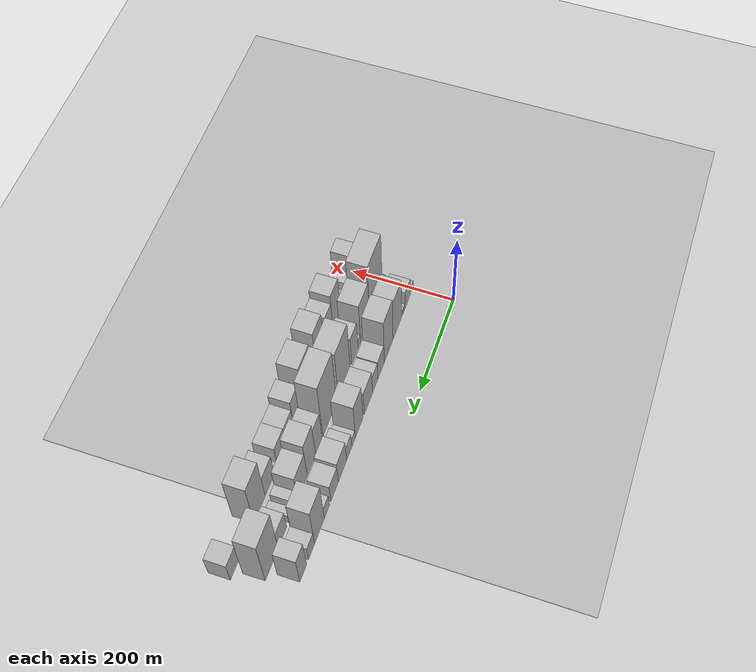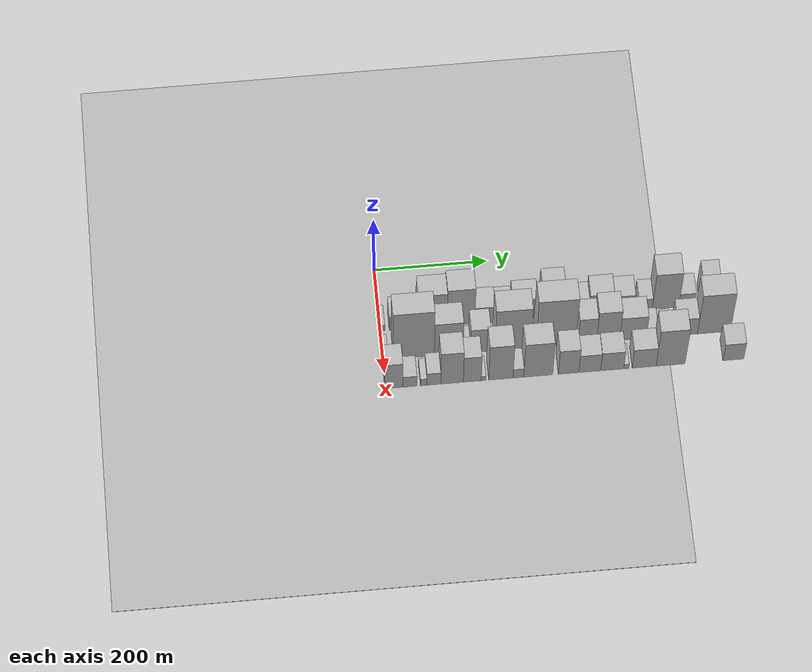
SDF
<sdf version="1.6">
 <world name="default">
  <include><name>ground_plane_1</name><uri>model://HANNAS_ground_plane</uri></include>
  <include>
   <name>ground_plane_2</name>
   <uri>model://HANNAS_ground_plane</uri>
   <pose>100 0 0  0 0 0</pose>
  </include>
  <model name="building_19">
   <static>1</static>
   <pose>100.0000 2.8807 0 0.000000 0.000000 0.000000</pose>
   <link name="link">
    <pose>0 0 12.00 0 0 0</pose>
    <collision name="collision"><geometry><box><size>40.0000 9.7299 24.0000</size></box></geometry></collision>
    <visual name="visual">
     <cast_shadows>0</cast_shadows>
     <geometry><box><size>40.0000 9.7299 24.0000</size></box></geometry>
     <material>
      <script>
       <uri>model://HANNAS_wall/materials/scripts</uri>
       <uri>model://HANNAS_wall/materials/textures</uri>
       <name>vrc/HANNAS_wall</name>
      </script>
     </material>
    </visual>
   </link>
  </model>
  <model name="building_20">
   <static>1</static>
   <pose>100.0000 31.1038 0 0.000000 0.000000 0.000000</pose>
   <link name="link">
    <pose>0 0 28.50 0 0 0</pose>
    <collision name="collision"><geometry><box><size>40.0000 30.7164 57.0000</size></box></geometry></collision>
    <visual name="visual">
     <cast_shadows>0</cast_shadows>
     <geometry><box><size>40.0000 30.7164 57.0000</size></box></geometry>
     <material>
      <script>
       <uri>model://HANNAS_wall/materials/scripts</uri>
       <uri>model://HANNAS_wall/materials/textures</uri>
       <name>vrc/HANNAS_wall</name>
      </script>
     </material>
    </visual>
   </link>
  </model>
  <model name="building_21">
   <static>1</static>
   <pose>100.0000 50.1146 0 0.000000 0.000000 0.000000</pose>
   <link name="link">
    <pose>0 0 7.50 0 0 0</pose>
    <collision name="collision"><geometry><box><size>40.0000 7.3051 15.0000</size></box></geometry></collision>
    <visual name="visual">
     <cast_shadows>0</cast_shadows>
     <geometry><box><size>40.0000 7.3051 15.0000</size></box></geometry>
     <material>
      <script>
       <uri>model://HANNAS_wall/materials/scripts</uri>
       <uri>model://HANNAS_wall/materials/textures</uri>
       <name>vrc/HANNAS_wall</name>
      </script>
     </material>
    </visual>
   </link>
  </model>
  <model name="building_22">
   <static>1</static>
   <pose>100.0000 58.1221 0 0.000000 0.000000 0.000000</pose>
   <link name="link">
    <pose>0 0 9.00 0 0 0</pose>
    <collision name="collision"><geometry><box><size>40.0000 8.7098 18.0000</size></box></geometry></collision>
    <visual name="visual">
     <cast_shadows>0</cast_shadows>
     <geometry><box><size>40.0000 8.7098 18.0000</size></box></geometry>
     <material>
      <script>
       <uri>model://HANNAS_wall/materials/scripts</uri>
       <uri>model://HANNAS_wall/materials/textures</uri>
       <name>vrc/HANNAS_wall</name>
      </script>
     </material>
    </visual>
   </link>
  </model>
  <model name="building_23">
   <static>1</static>
   <pose>100.0000 92.1150 0 0.000000 0.000000 0.000000</pose>
   <link name="link">
    <pose>0 0 66.00 0 0 0</pose>
    <collision name="collision"><geometry><box><size>40.0000 51.2761 132.0000</size></box></geometry></collision>
    <visual name="visual">
     <cast_shadows>0</cast_shadows>
     <geometry><box><size>40.0000 51.2761 132.0000</size></box></geometry>
     <material>
      <script>
       <uri>model://HANNAS_wall/materials/scripts</uri>
       <uri>model://HANNAS_wall/materials/textures</uri>
       <name>vrc/HANNAS_wall</name>
      </script>
     </material>
    </visual>
   </link>
  </model>
  <model name="building_24">
   <static>1</static>
   <pose>100.0000 142.2321 0 0.000000 0.000000 0.000000</pose>
   <link name="link">
    <pose>0 0 72.00 0 0 0</pose>
    <collision name="collision"><geometry><box><size>40.0000 48.9580 144.0000</size></box></geometry></collision>
    <visual name="visual">
     <cast_shadows>0</cast_shadows>
     <geometry><box><size>40.0000 48.9580 144.0000</size></box></geometry>
     <material>
      <script>
       <uri>model://HANNAS_wall/materials/scripts</uri>
       <uri>model://HANNAS_wall/materials/textures</uri>
       <name>vrc/HANNAS_wall</name>
      </script>
     </material>
    </visual>
   </link>
  </model>
  <model name="building_25">
   <static>1</static>
   <pose>100.0000 184.4532 0 0.000000 0.000000 0.000000</pose>
   <link name="link">
    <pose>0 0 31.50 0 0 0</pose>
    <collision name="collision"><geometry><box><size>40.0000 35.4842 63.0000</size></box></geometry></collision>
    <visual name="visual">
     <cast_shadows>0</cast_shadows>
     <geometry><box><size>40.0000 35.4842 63.0000</size></box></geometry>
     <material>
      <script>
       <uri>model://HANNAS_wall/materials/scripts</uri>
       <uri>model://HANNAS_wall/materials/textures</uri>
       <name>vrc/HANNAS_wall</name>
      </script>
     </material>
    </visual>
   </link>
  </model>
  <model name="building_26">
   <static>1</static>
   <pose>100.0000 217.3462 0 0.000000 0.000000 0.000000</pose>
   <link name="link">
    <pose>0 0 30.00 0 0 0</pose>
    <collision name="collision"><geometry><box><size>40.0000 30.3018 60.0000</size></box></geometry></collision>
    <visual name="visual">
     <cast_shadows>0</cast_shadows>
     <geometry><box><size>40.0000 30.3018 60.0000</size></box></geometry>
     <material>
      <script>
       <uri>model://HANNAS_wall/materials/scripts</uri>
       <uri>model://HANNAS_wall/materials/textures</uri>
       <name>vrc/HANNAS_wall</name>
      </script>
     </material>
    </visual>
   </link>
  </model>
  <model name="building_27">
   <static>1</static>
   <pose>100.0000 254.6046 0 0.000000 0.000000 0.000000</pose>
   <link name="link">
    <pose>0 0 40.50 0 0 0</pose>
    <collision name="collision"><geometry><box><size>40.0000 44.2150 81.0000</size></box></geometry></collision>
    <visual name="visual">
     <cast_shadows>0</cast_shadows>
     <geometry><box><size>40.0000 44.2150 81.0000</size></box></geometry>
     <material>
      <script>
       <uri>model://HANNAS_wall/materials/scripts</uri>
       <uri>model://HANNAS_wall/materials/textures</uri>
       <name>vrc/HANNAS_wall</name>
      </script>
     </material>
    </visual>
   </link>
  </model>
  <model name="building_28">
   <static>1</static>
   <pose>100.0000 304.0075 0 0.000000 0.000000 0.000000</pose>
   <link name="link">
    <pose>0 0 60.00 0 0 0</pose>
    <collision name="collision"><geometry><box><size>40.0000 40.5909 120.0000</size></box></geometry></collision>
    <visual name="visual">
     <cast_shadows>0</cast_shadows>
     <geometry><box><size>40.0000 40.5909 120.0000</size></box></geometry>
     <material>
      <script>
       <uri>model://HANNAS_wall/materials/scripts</uri>
       <uri>model://HANNAS_wall/materials/textures</uri>
       <name>vrc/HANNAS_wall</name>
      </script>
     </material>
    </visual>
   </link>
  </model>
  <model name="building_29">
   <static>1</static>
   <pose>100.0000 333.1711 0 0.000000 0.000000 0.000000</pose>
   <link name="link">
    <pose>0 0 15.00 0 0 0</pose>
    <collision name="collision"><geometry><box><size>40.0000 17.7362 30.0000</size></box></geometry></collision>
    <visual name="visual">
     <cast_shadows>0</cast_shadows>
     <geometry><box><size>40.0000 17.7362 30.0000</size></box></geometry>
     <material>
      <script>
       <uri>model://HANNAS_wall/materials/scripts</uri>
       <uri>model://HANNAS_wall/materials/textures</uri>
       <name>vrc/HANNAS_wall</name>
      </script>
     </material>
    </visual>
   </link>
  </model>
  <model name="building_30">
   <static>1</static>
   <pose>100.0000 355.6493 0 0.000000 0.000000 0.000000</pose>
   <link name="link">
    <pose>0 0 25.50 0 0 0</pose>
    <collision name="collision"><geometry><box><size>40.0000 27.2202 51.0000</size></box></geometry></collision>
    <visual name="visual">
     <cast_shadows>0</cast_shadows>
     <geometry><box><size>40.0000 27.2202 51.0000</size></box></geometry>
     <material>
      <script>
       <uri>model://HANNAS_wall/materials/scripts</uri>
       <uri>model://HANNAS_wall/materials/textures</uri>
       <name>vrc/HANNAS_wall</name>
      </script>
     </material>
    </visual>
   </link>
  </model>
  <model name="building_31">
   <static>1</static>
   <pose>100.0000 390.4348 0 0.000000 0.000000 0.000000</pose>
   <link name="link">
    <pose>0 0 37.50 0 0 0</pose>
    <collision name="collision"><geometry><box><size>40.0000 42.3508 75.0000</size></box></geometry></collision>
    <visual name="visual">
     <cast_shadows>0</cast_shadows>
     <geometry><box><size>40.0000 42.3508 75.0000</size></box></geometry>
     <material>
      <script>
       <uri>model://HANNAS_wall/materials/scripts</uri>
       <uri>model://HANNAS_wall/materials/textures</uri>
       <name>vrc/HANNAS_wall</name>
      </script>
     </material>
    </visual>
   </link>
  </model>
  <model name="building_32">
   <static>1</static>
   <pose>100.0000 430.4082 0 0.000000 0.000000 0.000000</pose>
   <link name="link">
    <pose>0 0 31.50 0 0 0</pose>
    <collision name="collision"><geometry><box><size>40.0000 37.5960 63.0000</size></box></geometry></collision>
    <visual name="visual">
     <cast_shadows>0</cast_shadows>
     <geometry><box><size>40.0000 37.5960 63.0000</size></box></geometry>
     <material>
      <script>
       <uri>model://HANNAS_wall/materials/scripts</uri>
       <uri>model://HANNAS_wall/materials/textures</uri>
       <name>vrc/HANNAS_wall</name>
      </script>
     </material>
    </visual>
   </link>
  </model>
  <model name="building_33">
   <static>1</static>
   <pose>100.0000 468.7266 0 0.000000 0.000000 0.000000</pose>
   <link name="link">
    <pose>0 0 21.00 0 0 0</pose>
    <collision name="collision"><geometry><box><size>40.0000 25.0409 42.0000</size></box></geometry></collision>
    <visual name="visual">
     <cast_shadows>0</cast_shadows>
     <geometry><box><size>40.0000 25.0409 42.0000</size></box></geometry>
     <material>
      <script>
       <uri>model://HANNAS_wall/materials/scripts</uri>
       <uri>model://HANNAS_wall/materials/textures</uri>
       <name>vrc/HANNAS_wall</name>
      </script>
     </material>
    </visual>
   </link>
  </model>
  <model name="building_34">
   <static>1</static>
   <pose>100.0000 504.8101 0 0.000000 0.000000 0.000000</pose>
   <link name="link">
    <pose>0 0 69.00 0 0 0</pose>
    <collision name="collision"><geometry><box><size>40.0000 47.1262 138.0000</size></box></geometry></collision>
    <visual name="visual">
     <cast_shadows>0</cast_shadows>
     <geometry><box><size>40.0000 47.1262 138.0000</size></box></geometry>
     <material>
      <script>
       <uri>model://HANNAS_wall/materials/scripts</uri>
       <uri>model://HANNAS_wall/materials/textures</uri>
       <name>vrc/HANNAS_wall</name>
      </script>
     </material>
    </visual>
   </link>
  </model>
  <model name="building_35">
   <static>1</static>
   <pose>100.0000 542.4914 0 0.000000 0.000000 0.000000</pose>
   <link name="link">
    <pose>0 0 25.50 0 0 0</pose>
    <collision name="collision"><geometry><box><size>40.0000 28.2363 51.0000</size></box></geometry></collision>
    <visual name="visual">
     <cast_shadows>0</cast_shadows>
     <geometry><box><size>40.0000 28.2363 51.0000</size></box></geometry>
     <material>
      <script>
       <uri>model://HANNAS_wall/materials/scripts</uri>
       <uri>model://HANNAS_wall/materials/textures</uri>
       <name>vrc/HANNAS_wall</name>
      </script>
     </material>
    </visual>
   </link>
  </model>
  <model name="building_36">
   <static>1</static>
   <pose>100.0000 581.3271 0 0.000000 0.000000 0.000000</pose>
   <link name="link">
    <pose>0 0 49.50 0 0 0</pose>
    <collision name="collision"><geometry><box><size>40.0000 31.4352 99.0000</size></box></geometry></collision>
    <visual name="visual">
     <cast_shadows>0</cast_shadows>
     <geometry><box><size>40.0000 31.4352 99.0000</size></box></geometry>
     <material>
      <script>
       <uri>model://HANNAS_wall/materials/scripts</uri>
       <uri>model://HANNAS_wall/materials/textures</uri>
       <name>vrc/HANNAS_wall</name>
      </script>
     </material>
    </visual>
   </link>
  </model>
  <model name="building_53">
   <static>1</static>
   <pose>155.0000 4.5576 0 0.000000 0.000000 0.000000</pose>
   <link name="link">
    <pose>0 0 10.50 0 0 0</pose>
    <collision name="collision"><geometry><box><size>40.0000 8.5847 21.0000</size></box></geometry></collision>
    <visual name="visual">
     <cast_shadows>0</cast_shadows>
     <geometry><box><size>40.0000 8.5847 21.0000</size></box></geometry>
     <material>
      <script>
       <uri>model://HANNAS_wall/materials/scripts</uri>
       <uri>model://HANNAS_wall/materials/textures</uri>
       <name>vrc/HANNAS_wall</name>
      </script>
     </material>
    </visual>
   </link>
  </model>
  <model name="building_54">
   <static>1</static>
   <pose>155.0000 54.0889 0 0.000000 0.000000 0.000000</pose>
   <link name="link">
    <pose>0 0 91.50 0 0 0</pose>
    <collision name="collision"><geometry><box><size>40.0000 72.4778 183.0000</size></box></geometry></collision>
    <visual name="visual">
     <cast_shadows>0</cast_shadows>
     <geometry><box><size>40.0000 72.4778 183.0000</size></box></geometry>
     <material>
      <script>
       <uri>model://HANNAS_wall/materials/scripts</uri>
       <uri>model://HANNAS_wall/materials/textures</uri>
       <name>vrc/HANNAS_wall</name>
      </script>
     </material>
    </visual>
   </link>
  </model>
  <model name="building_55">
   <static>1</static>
   <pose>155.0000 115.5524 0 0.000000 0.000000 0.000000</pose>
   <link name="link">
    <pose>0 0 64.50 0 0 0</pose>
    <collision name="collision"><geometry><box><size>40.0000 50.4492 129.0000</size></box></geometry></collision>
    <visual name="visual">
     <cast_shadows>0</cast_shadows>
     <geometry><box><size>40.0000 50.4492 129.0000</size></box></geometry>
     <material>
      <script>
       <uri>model://HANNAS_wall/materials/scripts</uri>
       <uri>model://HANNAS_wall/materials/textures</uri>
       <name>vrc/HANNAS_wall</name>
      </script>
     </material>
    </visual>
   </link>
  </model>
  <model name="building_56">
   <static>1</static>
   <pose>155.0000 147.4240 0 0.000000 0.000000 0.000000</pose>
   <link name="link">
    <pose>0 0 13.50 0 0 0</pose>
    <collision name="collision"><geometry><box><size>40.0000 13.2939 27.0000</size></box></geometry></collision>
    <visual name="visual">
     <cast_shadows>0</cast_shadows>
     <geometry><box><size>40.0000 13.2939 27.0000</size></box></geometry>
     <material>
      <script>
       <uri>model://HANNAS_wall/materials/scripts</uri>
       <uri>model://HANNAS_wall/materials/textures</uri>
       <name>vrc/HANNAS_wall</name>
      </script>
     </material>
    </visual>
   </link>
  </model>
  <model name="building_57">
   <static>1</static>
   <pose>155.0000 171.3424 0 0.000000 0.000000 0.000000</pose>
   <link name="link">
    <pose>0 0 46.50 0 0 0</pose>
    <collision name="collision"><geometry><box><size>40.0000 34.5428 93.0000</size></box></geometry></collision>
    <visual name="visual">
     <cast_shadows>0</cast_shadows>
     <geometry><box><size>40.0000 34.5428 93.0000</size></box></geometry>
     <material>
      <script>
       <uri>model://HANNAS_wall/materials/scripts</uri>
       <uri>model://HANNAS_wall/materials/textures</uri>
       <name>vrc/HANNAS_wall</name>
      </script>
     </material>
    </visual>
   </link>
  </model>
  <model name="building_58">
   <static>1</static>
   <pose>155.0000 228.3046 0 0.000000 0.000000 0.000000</pose>
   <link name="link">
    <pose>0 0 81.00 0 0 0</pose>
    <collision name="collision"><geometry><box><size>40.0000 63.3817 162.0000</size></box></geometry></collision>
    <visual name="visual">
     <cast_shadows>0</cast_shadows>
     <geometry><box><size>40.0000 63.3817 162.0000</size></box></geometry>
     <material>
      <script>
       <uri>model://HANNAS_wall/materials/scripts</uri>
       <uri>model://HANNAS_wall/materials/textures</uri>
       <name>vrc/HANNAS_wall</name>
      </script>
     </material>
    </visual>
   </link>
  </model>
  <model name="building_59">
   <static>1</static>
   <pose>155.0000 304.1104 0 0.000000 0.000000 0.000000</pose>
   <link name="link">
    <pose>0 0 93.00 0 0 0</pose>
    <collision name="collision"><geometry><box><size>40.0000 70.2300 186.0000</size></box></geometry></collision>
    <visual name="visual">
     <cast_shadows>0</cast_shadows>
     <geometry><box><size>40.0000 70.2300 186.0000</size></box></geometry>
     <material>
      <script>
       <uri>model://HANNAS_wall/materials/scripts</uri>
       <uri>model://HANNAS_wall/materials/textures</uri>
       <name>vrc/HANNAS_wall</name>
      </script>
     </material>
    </visual>
   </link>
  </model>
  <model name="building_60">
   <static>1</static>
   <pose>155.0000 359.6928 0 0.000000 0.000000 0.000000</pose>
   <link name="link">
    <pose>0 0 49.50 0 0 0</pose>
    <collision name="collision"><geometry><box><size>40.0000 32.9348 99.0000</size></box></geometry></collision>
    <visual name="visual">
     <cast_shadows>0</cast_shadows>
     <geometry><box><size>40.0000 32.9348 99.0000</size></box></geometry>
     <material>
      <script>
       <uri>model://HANNAS_wall/materials/scripts</uri>
       <uri>model://HANNAS_wall/materials/textures</uri>
       <name>vrc/HANNAS_wall</name>
      </script>
     </material>
    </visual>
   </link>
  </model>
  <model name="building_61">
   <static>1</static>
   <pose>155.0000 396.5937 0 0.000000 0.000000 0.000000</pose>
   <link name="link">
    <pose>0 0 60.00 0 0 0</pose>
    <collision name="collision"><geometry><box><size>40.0000 40.8671 120.0000</size></box></geometry></collision>
    <visual name="visual">
     <cast_shadows>0</cast_shadows>
     <geometry><box><size>40.0000 40.8671 120.0000</size></box></geometry>
     <material>
      <script>
       <uri>model://HANNAS_wall/materials/scripts</uri>
       <uri>model://HANNAS_wall/materials/textures</uri>
       <name>vrc/HANNAS_wall</name>
      </script>
     </material>
    </visual>
   </link>
  </model>
  <model name="building_62">
   <static>1</static>
   <pose>155.0000 440.6089 0 0.000000 0.000000 0.000000</pose>
   <link name="link">
    <pose>0 0 45.00 0 0 0</pose>
    <collision name="collision"><geometry><box><size>40.0000 47.1632 90.0000</size></box></geometry></collision>
    <visual name="visual">
     <cast_shadows>0</cast_shadows>
     <geometry><box><size>40.0000 47.1632 90.0000</size></box></geometry>
     <material>
      <script>
       <uri>model://HANNAS_wall/materials/scripts</uri>
       <uri>model://HANNAS_wall/materials/textures</uri>
       <name>vrc/HANNAS_wall</name>
      </script>
     </material>
    </visual>
   </link>
  </model>
  <model name="building_63">
   <static>1</static>
   <pose>155.0000 473.9789 0 0.000000 0.000000 0.000000</pose>
   <link name="link">
    <pose>0 0 19.50 0 0 0</pose>
    <collision name="collision"><geometry><box><size>40.0000 19.5768 39.0000</size></box></geometry></collision>
    <visual name="visual">
     <cast_shadows>0</cast_shadows>
     <geometry><box><size>40.0000 19.5768 39.0000</size></box></geometry>
     <material>
      <script>
       <uri>model://HANNAS_wall/materials/scripts</uri>
       <uri>model://HANNAS_wall/materials/textures</uri>
       <name>vrc/HANNAS_wall</name>
      </script>
     </material>
    </visual>
   </link>
  </model>
  <model name="building_64">
   <static>1</static>
   <pose>155.0000 498.1574 0 0.000000 0.000000 0.000000</pose>
   <link name="link">
    <pose>0 0 15.00 0 0 0</pose>
    <collision name="collision"><geometry><box><size>40.0000 16.7804 30.0000</size></box></geometry></collision>
    <visual name="visual">
     <cast_shadows>0</cast_shadows>
     <geometry><box><size>40.0000 16.7804 30.0000</size></box></geometry>
     <material>
      <script>
       <uri>model://HANNAS_wall/materials/scripts</uri>
       <uri>model://HANNAS_wall/materials/textures</uri>
       <name>vrc/HANNAS_wall</name>
      </script>
     </material>
    </visual>
   </link>
  </model>
  <model name="building_65">
   <static>1</static>
   <pose>155.0000 535.0124 0 0.000000 0.000000 0.000000</pose>
   <link name="link">
    <pose>0 0 33.00 0 0 0</pose>
    <collision name="collision"><geometry><box><size>40.0000 38.9295 66.0000</size></box></geometry></collision>
    <visual name="visual">
     <cast_shadows>0</cast_shadows>
     <geometry><box><size>40.0000 38.9295 66.0000</size></box></geometry>
     <material>
      <script>
       <uri>model://HANNAS_wall/materials/scripts</uri>
       <uri>model://HANNAS_wall/materials/textures</uri>
       <name>vrc/HANNAS_wall</name>
      </script>
     </material>
    </visual>
   </link>
  </model>
  <model name="building_66">
   <static>1</static>
   <pose>155.0000 583.6908 0 0.000000 0.000000 0.000000</pose>
   <link name="link">
    <pose>0 0 78.00 0 0 0</pose>
    <collision name="collision"><geometry><box><size>40.0000 58.4274 156.0000</size></box></geometry></collision>
    <visual name="visual">
     <cast_shadows>0</cast_shadows>
     <geometry><box><size>40.0000 58.4274 156.0000</size></box></geometry>
     <material>
      <script>
       <uri>model://HANNAS_wall/materials/scripts</uri>
       <uri>model://HANNAS_wall/materials/textures</uri>
       <name>vrc/HANNAS_wall</name>
      </script>
     </material>
    </visual>
   </link>
  </model>
  <model name="building_83">
   <static>1</static>
   <pose>210.0000 13.9930 0 0.000000 0.000000 0.000000</pose>
   <link name="link">
    <pose>0 0 49.50 0 0 0</pose>
    <collision name="collision"><geometry><box><size>40.0000 32.1317 99.0000</size></box></geometry></collision>
    <visual name="visual">
     <cast_shadows>0</cast_shadows>
     <geometry><box><size>40.0000 32.1317 99.0000</size></box></geometry>
     <material>
      <script>
       <uri>model://HANNAS_wall/materials/scripts</uri>
       <uri>model://HANNAS_wall/materials/textures</uri>
       <name>vrc/HANNAS_wall</name>
      </script>
     </material>
    </visual>
   </link>
  </model>
  <model name="building_84">
   <static>1</static>
   <pose>210.0000 42.2675 0 0.000000 0.000000 0.000000</pose>
   <link name="link">
    <pose>0 0 21.00 0 0 0</pose>
    <collision name="collision"><geometry><box><size>40.0000 24.4173 42.0000</size></box></geometry></collision>
    <visual name="visual">
     <cast_shadows>0</cast_shadows>
     <geometry><box><size>40.0000 24.4173 42.0000</size></box></geometry>
     <material>
      <script>
       <uri>model://HANNAS_wall/materials/scripts</uri>
       <uri>model://HANNAS_wall/materials/textures</uri>
       <name>vrc/HANNAS_wall</name>
      </script>
     </material>
    </visual>
   </link>
  </model>
  <model name="building_85">
   <static>1</static>
   <pose>210.0000 66.1847 0 0.000000 0.000000 0.000000</pose>
   <link name="link">
    <pose>0 0 13.50 0 0 0</pose>
    <collision name="collision"><geometry><box><size>40.0000 11.4173 27.0000</size></box></geometry></collision>
    <visual name="visual">
     <cast_shadows>0</cast_shadows>
     <geometry><box><size>40.0000 11.4173 27.0000</size></box></geometry>
     <material>
      <script>
       <uri>model://HANNAS_wall/materials/scripts</uri>
       <uri>model://HANNAS_wall/materials/textures</uri>
       <name>vrc/HANNAS_wall</name>
      </script>
     </material>
    </visual>
   </link>
  </model>
  <model name="building_86">
   <static>1</static>
   <pose>210.0000 84.0470 0 0.000000 0.000000 0.000000</pose>
   <link name="link">
    <pose>0 0 24.00 0 0 0</pose>
    <collision name="collision"><geometry><box><size>40.0000 24.3071 48.0000</size></box></geometry></collision>
    <visual name="visual">
     <cast_shadows>0</cast_shadows>
     <geometry><box><size>40.0000 24.3071 48.0000</size></box></geometry>
     <material>
      <script>
       <uri>model://HANNAS_wall/materials/scripts</uri>
       <uri>model://HANNAS_wall/materials/textures</uri>
       <name>vrc/HANNAS_wall</name>
      </script>
     </material>
    </visual>
   </link>
  </model>
  <model name="building_87">
   <static>1</static>
   <pose>210.0000 116.0348 0 0.000000 0.000000 0.000000</pose>
   <link name="link">
    <pose>0 0 63.00 0 0 0</pose>
    <collision name="collision"><geometry><box><size>40.0000 39.6685 126.0000</size></box></geometry></collision>
    <visual name="visual">
     <cast_shadows>0</cast_shadows>
     <geometry><box><size>40.0000 39.6685 126.0000</size></box></geometry>
     <material>
      <script>
       <uri>model://HANNAS_wall/materials/scripts</uri>
       <uri>model://HANNAS_wall/materials/textures</uri>
       <name>vrc/HANNAS_wall</name>
      </script>
     </material>
    </visual>
   </link>
  </model>
  <model name="building_88">
   <static>1</static>
   <pose>210.0000 151.5116 0 0.000000 0.000000 0.000000</pose>
   <link name="link">
    <pose>0 0 51.00 0 0 0</pose>
    <collision name="collision"><geometry><box><size>40.0000 31.2851 102.0000</size></box></geometry></collision>
    <visual name="visual">
     <cast_shadows>0</cast_shadows>
     <geometry><box><size>40.0000 31.2851 102.0000</size></box></geometry>
     <material>
      <script>
       <uri>model://HANNAS_wall/materials/scripts</uri>
       <uri>model://HANNAS_wall/materials/textures</uri>
       <name>vrc/HANNAS_wall</name>
      </script>
     </material>
    </visual>
   </link>
  </model>
  <model name="building_89">
   <static>1</static>
   <pose>210.0000 171.2355 0 0.000000 0.000000 0.000000</pose>
   <link name="link">
    <pose>0 0 9.00 0 0 0</pose>
    <collision name="collision"><geometry><box><size>40.0000 8.1627 18.0000</size></box></geometry></collision>
    <visual name="visual">
     <cast_shadows>0</cast_shadows>
     <geometry><box><size>40.0000 8.1627 18.0000</size></box></geometry>
     <material>
      <script>
       <uri>model://HANNAS_wall/materials/scripts</uri>
       <uri>model://HANNAS_wall/materials/textures</uri>
       <name>vrc/HANNAS_wall</name>
      </script>
     </material>
    </visual>
   </link>
  </model>
  <model name="building_90">
   <static>1</static>
   <pose>210.0000 201.6171 0 0.000000 0.000000 0.000000</pose>
   <link name="link">
    <pose>0 0 69.00 0 0 0</pose>
    <collision name="collision"><geometry><box><size>40.0000 42.6003 138.0000</size></box></geometry></collision>
    <visual name="visual">
     <cast_shadows>0</cast_shadows>
     <geometry><box><size>40.0000 42.6003 138.0000</size></box></geometry>
     <material>
      <script>
       <uri>model://HANNAS_wall/materials/scripts</uri>
       <uri>model://HANNAS_wall/materials/textures</uri>
       <name>vrc/HANNAS_wall</name>
      </script>
     </material>
    </visual>
   </link>
  </model>
  <model name="building_91">
   <static>1</static>
   <pose>210.0000 232.3833 0 0.000000 0.000000 0.000000</pose>
   <link name="link">
    <pose>0 0 18.00 0 0 0</pose>
    <collision name="collision"><geometry><box><size>40.0000 18.9323 36.0000</size></box></geometry></collision>
    <visual name="visual">
     <cast_shadows>0</cast_shadows>
     <geometry><box><size>40.0000 18.9323 36.0000</size></box></geometry>
     <material>
      <script>
       <uri>model://HANNAS_wall/materials/scripts</uri>
       <uri>model://HANNAS_wall/materials/textures</uri>
       <name>vrc/HANNAS_wall</name>
      </script>
     </material>
    </visual>
   </link>
  </model>
  <model name="building_92">
   <static>1</static>
   <pose>210.0000 267.2807 0 0.000000 0.000000 0.000000</pose>
   <link name="link">
    <pose>0 0 67.50 0 0 0</pose>
    <collision name="collision"><geometry><box><size>40.0000 50.8625 135.0000</size></box></geometry></collision>
    <visual name="visual">
     <cast_shadows>0</cast_shadows>
     <geometry><box><size>40.0000 50.8625 135.0000</size></box></geometry>
     <material>
      <script>
       <uri>model://HANNAS_wall/materials/scripts</uri>
       <uri>model://HANNAS_wall/materials/textures</uri>
       <name>vrc/HANNAS_wall</name>
      </script>
     </material>
    </visual>
   </link>
  </model>
  <model name="building_93">
   <static>1</static>
   <pose>210.0000 320.8615 0 0.000000 0.000000 0.000000</pose>
   <link name="link">
    <pose>0 0 48.00 0 0 0</pose>
    <collision name="collision"><geometry><box><size>40.0000 36.2992 96.0000</size></box></geometry></collision>
    <visual name="visual">
     <cast_shadows>0</cast_shadows>
     <geometry><box><size>40.0000 36.2992 96.0000</size></box></geometry>
     <material>
      <script>
       <uri>model://HANNAS_wall/materials/scripts</uri>
       <uri>model://HANNAS_wall/materials/textures</uri>
       <name>vrc/HANNAS_wall</name>
      </script>
     </material>
    </visual>
   </link>
  </model>
  <model name="building_94">
   <static>1</static>
   <pose>210.0000 358.2558 0 0.000000 0.000000 0.000000</pose>
   <link name="link">
    <pose>0 0 34.50 0 0 0</pose>
    <collision name="collision"><geometry><box><size>40.0000 38.4893 69.0000</size></box></geometry></collision>
    <visual name="visual">
     <cast_shadows>0</cast_shadows>
     <geometry><box><size>40.0000 38.4893 69.0000</size></box></geometry>
     <material>
      <script>
       <uri>model://HANNAS_wall/materials/scripts</uri>
       <uri>model://HANNAS_wall/materials/textures</uri>
       <name>vrc/HANNAS_wall</name>
      </script>
     </material>
    </visual>
   </link>
  </model>
  <model name="building_95">
   <static>1</static>
   <pose>210.0000 397.7287 0 0.000000 0.000000 0.000000</pose>
   <link name="link">
    <pose>0 0 36.00 0 0 0</pose>
    <collision name="collision"><geometry><box><size>40.0000 40.4565 72.0000</size></box></geometry></collision>
    <visual name="visual">
     <cast_shadows>0</cast_shadows>
     <geometry><box><size>40.0000 40.4565 72.0000</size></box></geometry>
     <material>
      <script>
       <uri>model://HANNAS_wall/materials/scripts</uri>
       <uri>model://HANNAS_wall/materials/textures</uri>
       <name>vrc/HANNAS_wall</name>
      </script>
     </material>
    </visual>
   </link>
  </model>
  <model name="building_96">
   <static>1</static>
   <pose>210.0000 422.4506 0 0.000000 0.000000 0.000000</pose>
   <link name="link">
    <pose>0 0 9.00 0 0 0</pose>
    <collision name="collision"><geometry><box><size>40.0000 8.9874 18.0000</size></box></geometry></collision>
    <visual name="visual">
     <cast_shadows>0</cast_shadows>
     <geometry><box><size>40.0000 8.9874 18.0000</size></box></geometry>
     <material>
      <script>
       <uri>model://HANNAS_wall/materials/scripts</uri>
       <uri>model://HANNAS_wall/materials/textures</uri>
       <name>vrc/HANNAS_wall</name>
      </script>
     </material>
    </visual>
   </link>
  </model>
  <model name="building_97">
   <static>1</static>
   <pose>210.0000 454.0130 0 0.000000 0.000000 0.000000</pose>
   <link name="link">
    <pose>0 0 37.50 0 0 0</pose>
    <collision name="collision"><geometry><box><size>40.0000 42.1374 75.0000</size></box></geometry></collision>
    <visual name="visual">
     <cast_shadows>0</cast_shadows>
     <geometry><box><size>40.0000 42.1374 75.0000</size></box></geometry>
     <material>
      <script>
       <uri>model://HANNAS_wall/materials/scripts</uri>
       <uri>model://HANNAS_wall/materials/textures</uri>
       <name>vrc/HANNAS_wall</name>
      </script>
     </material>
    </visual>
   </link>
  </model>
  <model name="building_98">
   <static>1</static>
   <pose>210.0000 500.5688 0 0.000000 0.000000 0.000000</pose>
   <link name="link">
    <pose>0 0 72.00 0 0 0</pose>
    <collision name="collision"><geometry><box><size>40.0000 50.9742 144.0000</size></box></geometry></collision>
    <visual name="visual">
     <cast_shadows>0</cast_shadows>
     <geometry><box><size>40.0000 50.9742 144.0000</size></box></geometry>
     <material>
      <script>
       <uri>model://HANNAS_wall/materials/scripts</uri>
       <uri>model://HANNAS_wall/materials/textures</uri>
       <name>vrc/HANNAS_wall</name>
      </script>
     </material>
    </visual>
   </link>
  </model>
  <model name="building_99">
   <static>1</static>
   <pose>210.0000 611.3303 0 0.000000 0.000000 0.000000</pose>
   <link name="link">
    <pose>0 0 33.00 0 0 0</pose>
    <collision name="collision"><geometry><box><size>40.0000 36.8496 66.0000</size></box></geometry></collision>
    <visual name="visual">
     <cast_shadows>0</cast_shadows>
     <geometry><box><size>40.0000 36.8496 66.0000</size></box></geometry>
     <material>
      <script>
       <uri>model://HANNAS_wall/materials/scripts</uri>
       <uri>model://HANNAS_wall/materials/textures</uri>
       <name>vrc/HANNAS_wall</name>
      </script>
     </material>
    </visual>
   </link>
  </model>
 </world>
</sdf>
